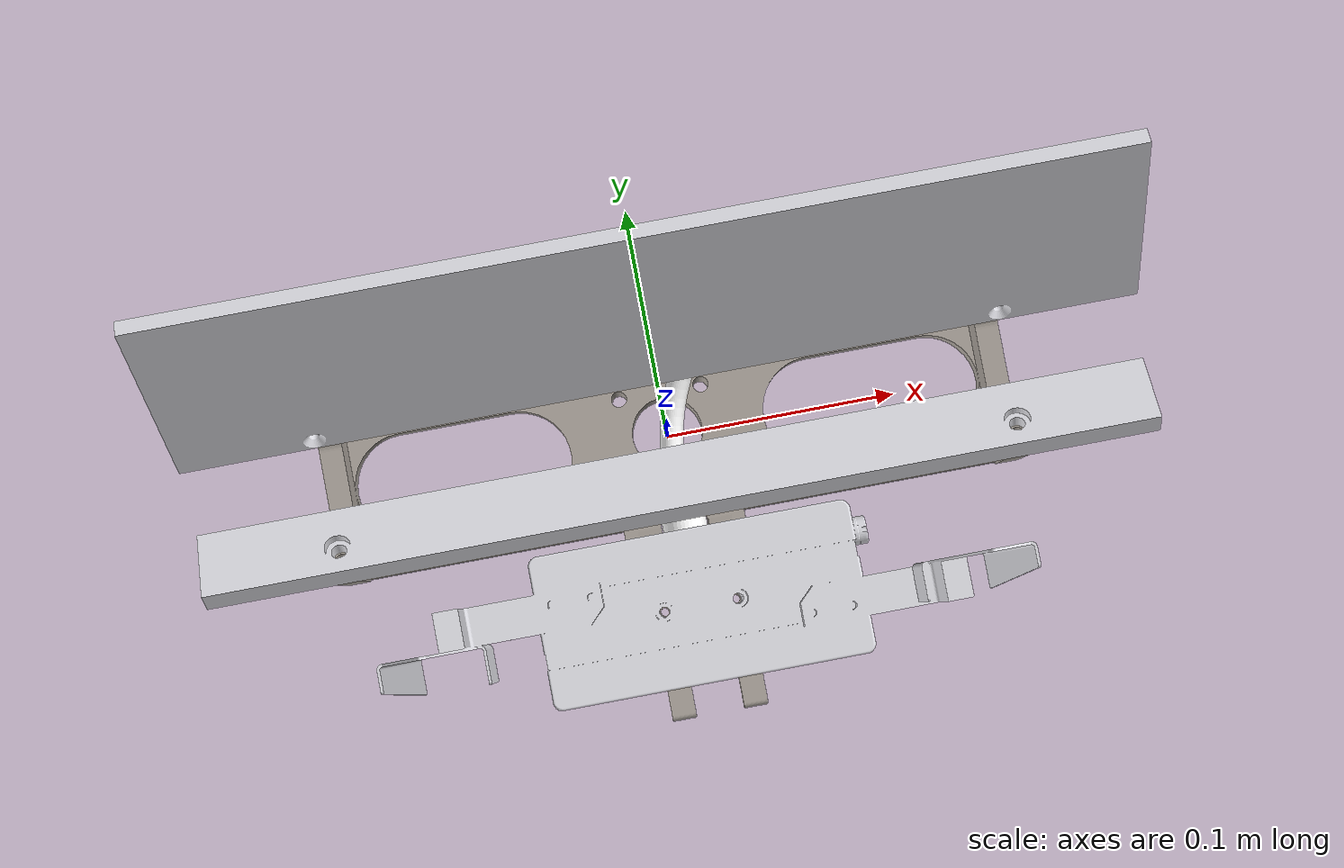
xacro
<?xml version="1.0"?>
<robot xmlns:xacro="http://wiki.ros.org/xacro" name="tray_gripper">

    <xacro:arg name="prefix" default="tray_gripper" />
    <xacro:include filename="$(find tray_gripper)/xacro/tray_gripper.xacro" />

    <xacro:tray_gripper
        prefix="$(arg prefix)"
    >
        <origin xyz="0 0 0" rpy="0 0 0" />
    </xacro:tray_gripper>

</robot>

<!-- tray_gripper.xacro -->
<robot xmlns:xacro="http://wiki.ros.org/xacro">

    <xacro:macro name="tray_gripper"
        params="
        prefix:='tray_gripper'
        connected_to:=''
        *origin"
    >

        <!-- virtual joint -->
        <xacro:unless value="${not connected_to}">
            <joint name="world" type="fixed">
                <parent link="${connected_to}" />
                <child link="${prefix}_base_link" />
                <xacro:insert_block name="origin" />
            </joint>
        </xacro:unless>

        <link
            name="${prefix}_base_link">
            <inertial>
                <origin
                    xyz="1.3918E-17 -0.0018924 0.010868"
                    rpy="0 0 0" />
                <mass
                    value="1.6375" />
                <inertia
                    ixx="0.0013196"
                    ixy="-3.504E-19"
                    ixz="-1.2996E-18"
                    iyy="0.0080644"
                    iyz="-5.7578E-05"
                    izz="0.009036" />
            </inertial>
            <visual>
                <origin
                    xyz="0 0 0"
                    rpy="0 0 0" />
                <geometry>
                    <mesh
                        filename="package://tray_gripper/meshes/gripper_base_link.STL" />
                </geometry>
                <material
                    name="">
                    <color
                        rgba="0.64706 0.61961 0.58824 1" />
                </material>
            </visual>
            <collision>
                <origin
                    xyz="0 0 0"
                    rpy="0 0 0" />
                <geometry>
                    <mesh
                        filename="package://tray_gripper/meshes/gripper_base_link.STL" />
                </geometry>
            </collision>
        </link>
        <link
            name="${prefix}_rot">
            <inertial>
                <origin
                    xyz="4.3535E-05 0.015829 0.063039"
                    rpy="0 0 0" />
                <mass
                    value="3.8183" />
                <inertia
                    ixx="0.0020492"
                    ixy="3.0924E-07"
                    ixz="6.575E-06"
                    iyy="0.019033"
                    iyz="0.00014163"
                    izz="0.019448" />
            </inertial>
            <visual>
                <origin
                    xyz="0 0 0"
                    rpy="0 0 0" />
                <geometry>
                    <mesh
                        filename="package://tray_gripper/meshes/gripper_rot.STL" />
                </geometry>
                <material
                    name="">
                    <color
                        rgba="0.86667 0.86667 0.8902 1" />
                </material>
            </visual>
            <collision>
                <origin
                    xyz="0 0 0"
                    rpy="0 0 0" />
                <geometry>
                    <mesh
                        filename="package://tray_gripper/meshes/gripper_rot.STL" />
                </geometry>
            </collision>
        </link>
        <joint
            name="${prefix}_rot"
            type="fixed">
            <origin
                xyz="0 -0.00036751 0.03766"
                rpy="1.0472 0 0" />
            <parent
                link="${prefix}_base_link" />
            <child
                link="${prefix}_rot" />
            <axis
                xyz="0 0 0" />
        </joint>
        <link
            name="${prefix}_camera">
            <inertial>
                <origin
                    xyz="0 0 0"
                    rpy="0 0 0" />
                <mass
                    value="0" />
                <inertia
                    ixx="0"
                    ixy="0"
                    ixz="0"
                    iyy="0"
                    iyz="0"
                    izz="0" />
            </inertial>
            <visual>
                <origin
                    xyz="0 0 0"
                    rpy="0 0 0" />
                <geometry>
                    <mesh
                        filename="package://tray_gripper/meshes/gripper_camera.STL" />
                </geometry>
                <material
                    name="">
                    <color
                        rgba="1 1 1 1" />
                </material>
            </visual>
            <collision>
                <origin
                    xyz="0 0 0"
                    rpy="0 0 0" />
                <geometry>
                    <mesh
                        filename="package://tray_gripper/meshes/gripper_camera.STL" />
                </geometry>
            </collision>
        </link>
        <joint
            name="${prefix}_camera"
            type="continuous">
            <origin
                xyz="0 -0.0812 0.0263400000000001"
                rpy="1.5707963267949 0 0" />
            <parent
                link="${prefix}_base_link" />
            <child
                link="${prefix}_camera" />
            <axis
                xyz="0 0 1" />
        </joint>

    </xacro:macro>

</robot>
